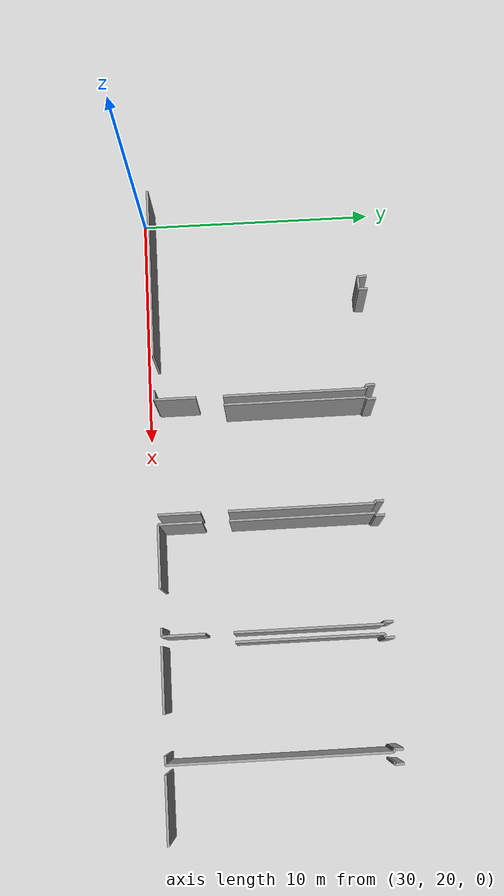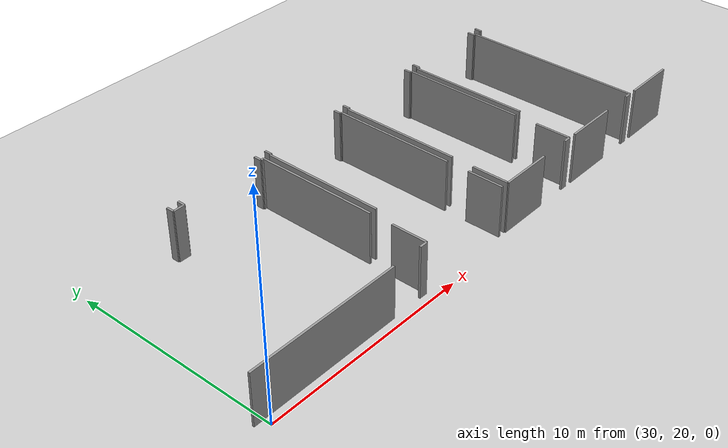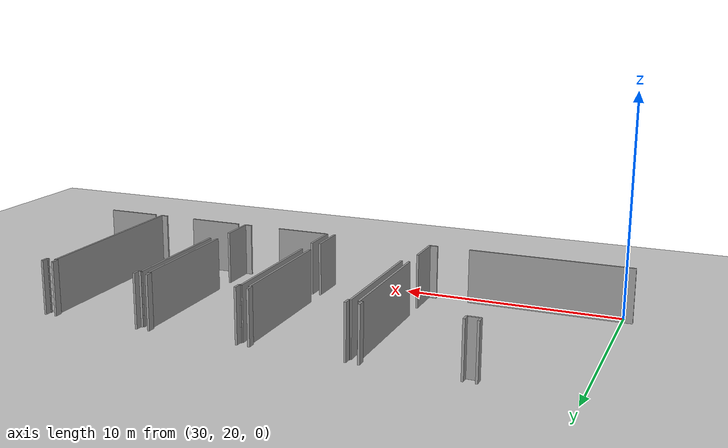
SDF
<sdf version="1.6">
 <world name="default">
  <model name="ground_plane">
   <static>1</static>
   <link name="link">
    <collision name="collision">
     <geometry><plane><normal>0 0 1</normal><size>100 100</size></plane></geometry>
     <surface><friction><ode><mu>100</mu><mu2>50</mu2></ode></friction></surface>
    </collision>
    <visual name="visual">
     <cast_shadows>0</cast_shadows>
     <geometry><plane><normal>0 0 1</normal><size>100 100</size></plane></geometry>
     <material>
      <script><uri>file://media/materials/scripts/gazebo.material</uri><name>Gazebo/Grey</name></script>
     </material>
    </visual>
   </link>
  </model>
  <model name="50010535_PLAN1">
   <static>1</static>
   <link name="Wall_558">
    <collision name="Wall_558_Collision">
     <geometry><box><size>0.36339841045 0.1 2.5</size></box></geometry>
     <pose>0.181699205225 0 1.25 0 0 0</pose>
    </collision>
    <visual name="Wall_558_Visual">
     <pose>0.181699205225 0 1.25 0 0 0</pose>
     <geometry><box><size>0.36339841045 0.1 2.5</size></box></geometry>
     <material>
      <script><uri>file://media/materials/scripts/gazebo.material</uri><name>Gazebo/Grey</name></script>
      <ambient>1 1 1 1</ambient>
     </material>
    </visual>
    <pose>136.524970934 -0.0175346086161 0 0 0 -1.57079632679</pose>
   </link>
   <link name="Wall_559">
    <collision name="Wall_559_Collision">
     <geometry><box><size>0.56161572524 0.1 2.5</size></box></geometry>
     <pose>0.28080786262 0 1.25 0 0 0</pose>
    </collision>
    <visual name="Wall_559_Visual">
     <pose>0.28080786262 0 1.25 0 0 0</pose>
     <geometry><box><size>0.56161572524 0.1 2.5</size></box></geometry>
     <material>
      <script><uri>file://media/materials/scripts/gazebo.material</uri><name>Gazebo/Grey</name></script>
      <ambient>1 1 1 1</ambient>
     </material>
    </visual>
    <pose>136.524970934 -0.380933019066 0 0 0 0.0</pose>
   </link>
   <link name="Wall_560">
    <collision name="Wall_560_Collision">
     <geometry><box><size>0.36746440665 0.1 2.5</size></box></geometry>
     <pose>0.183732203325 0 1.25 0 0 0</pose>
    </collision>
    <visual name="Wall_560_Visual">
     <pose>0.183732203325 0 1.25 0 0 0</pose>
     <geometry><box><size>0.36746440665 0.1 2.5</size></box></geometry>
     <material>
      <script><uri>file://media/materials/scripts/gazebo.material</uri><name>Gazebo/Grey</name></script>
      <ambient>1 1 1 1</ambient>
     </material>
    </visual>
    <pose>137.08658666 -0.380933019066 0 0 0 1.57079632679</pose>
   </link>
   <link name="Wall_561">
    <collision name="Wall_561_Collision">
     <geometry><box><size>0.371784527614 0.1 2.5</size></box></geometry>
     <pose>0.185892263807 0 1.25 0 0 0</pose>
    </collision>
    <visual name="Wall_561_Visual">
     <pose>0.185892263807 0 1.25 0 0 0</pose>
     <geometry><box><size>0.371784527614 0.1 2.5</size></box></geometry>
     <material>
      <script><uri>file://media/materials/scripts/gazebo.material</uri><name>Gazebo/Grey</name></script>
      <ambient>1 1 1 1</ambient>
     </material>
    </visual>
    <pose>141.274816871 -0.0134686124153 0 0 0 -1.57079632679</pose>
   </link>
   <link name="Wall_562">
    <collision name="Wall_562_Collision">
     <geometry><box><size>0.152728982294 0.1 2.5</size></box></geometry>
     <pose>0.0763644911469 0 1.25 0 0 0</pose>
    </collision>
    <visual name="Wall_562_Visual">
     <pose>0.0763644911469 0 1.25 0 0 0</pose>
     <geometry><box><size>0.152728982294 0.1 2.5</size></box></geometry>
     <material>
      <script><uri>file://media/materials/scripts/gazebo.material</uri><name>Gazebo/Grey</name></script>
      <ambient>1 1 1 1</ambient>
     </material>
    </visual>
    <pose>141.274816871 -0.385253140029 0 0 0 0.0</pose>
   </link>
   <link name="Wall_563">
    <collision name="Wall_563_Collision">
     <geometry><box><size>5.86901139114 0.1 2.5</size></box></geometry>
     <pose>2.93450569557 0 1.25 0 0 0</pose>
    </collision>
    <visual name="Wall_563_Visual">
     <pose>2.93450569557 0 1.25 0 0 0</pose>
     <geometry><box><size>5.86901139114 0.1 2.5</size></box></geometry>
     <material>
      <script><uri>file://media/materials/scripts/gazebo.material</uri><name>Gazebo/Grey</name></script>
      <ambient>1 1 1 1</ambient>
     </material>
    </visual>
    <pose>141.427545854 -0.385253140029 0 0 0 -1.57079632679</pose>
   </link>
   <link name="Wall_564">
    <collision name="Wall_564_Collision">
     <geometry><box><size>1.71051377674 0.1 2.5</size></box></geometry>
     <pose>0.855256888369 0 1.25 0 0 0</pose>
    </collision>
    <visual name="Wall_564_Visual">
     <pose>0.855256888369 0 1.25 0 0 0</pose>
     <geometry><box><size>1.71051377674 0.1 2.5</size></box></geometry>
     <material>
      <script><uri>file://media/materials/scripts/gazebo.material</uri><name>Gazebo/Grey</name></script>
      <ambient>1 1 1 1</ambient>
     </material>
    </visual>
    <pose>141.427545854 -7.3622484959 0 0 0 -1.57079632679</pose>
   </link>
   <link name="Wall_565">
    <collision name="Wall_565_Collision">
     <geometry><box><size>0.39033563528 0.1 2.5</size></box></geometry>
     <pose>0.19516781764 0 1.25 0 0 0</pose>
    </collision>
    <visual name="Wall_565_Visual">
     <pose>0.19516781764 0 1.25 0 0 0</pose>
     <geometry><box><size>0.39033563528 0.1 2.5</size></box></geometry>
     <material>
      <script><uri>file://media/materials/scripts/gazebo.material</uri><name>Gazebo/Grey</name></script>
      <ambient>1 1 1 1</ambient>
     </material>
    </visual>
    <pose>141.427545854 -9.07276227264 0 0 0 3.14159265359</pose>
   </link>
   <link name="Wall_566">
    <collision name="Wall_566_Collision">
     <geometry><box><size>7.38667386608 0.1 2.5</size></box></geometry>
     <pose>3.69333693304 0 1.25 0 0 0</pose>
    </collision>
    <visual name="Wall_566_Visual">
     <pose>3.69333693304 0 1.25 0 0 0</pose>
     <geometry><box><size>7.38667386608 0.1 2.5</size></box></geometry>
     <material>
      <script><uri>file://media/materials/scripts/gazebo.material</uri><name>Gazebo/Grey</name></script>
      <ambient>1 1 1 1</ambient>
     </material>
    </visual>
    <pose>139.535332872 -9.07276227264 0 0 0 -3.13877159251</pose>
   </link>
   <link name="Wall_568">
    <collision name="Wall_568_Collision">
     <geometry><box><size>5.83902466916 0.1 2.5</size></box></geometry>
     <pose>2.91951233458 0 1.25 0 0 0</pose>
    </collision>
    <visual name="Wall_568_Visual">
     <pose>2.91951233458 0 1.25 0 0 0</pose>
     <geometry><box><size>5.83902466916 0.1 2.5</size></box></geometry>
     <material>
      <script><uri>file://media/materials/scripts/gazebo.material</uri><name>Gazebo/Grey</name></script>
      <ambient>1 1 1 1</ambient>
     </material>
    </visual>
    <pose>141.788911266 -6.24028766923 0 0 0 1.57079632679</pose>
   </link>
   <link name="Wall_569">
    <collision name="Wall_569_Collision">
     <geometry><box><size>0.0787786763912 0.1 2.5</size></box></geometry>
     <pose>0.0393893381956 0 1.25 0 0 0</pose>
    </collision>
    <visual name="Wall_569_Visual">
     <pose>0.0393893381956 0 1.25 0 0 0</pose>
     <geometry><box><size>0.0787786763912 0.1 2.5</size></box></geometry>
     <material>
      <script><uri>file://media/materials/scripts/gazebo.material</uri><name>Gazebo/Grey</name></script>
      <ambient>1 1 1 1</ambient>
     </material>
    </visual>
    <pose>141.788911266 -0.40126300007 0 0 0 0.0</pose>
   </link>
   <link name="Wall_570">
    <collision name="Wall_570_Collision">
     <geometry><box><size>0.371276278089 0.1 2.5</size></box></geometry>
     <pose>0.185638139044 0 1.25 0 0 0</pose>
    </collision>
    <visual name="Wall_570_Visual">
     <pose>0.185638139044 0 1.25 0 0 0</pose>
     <geometry><box><size>0.371276278089 0.1 2.5</size></box></geometry>
     <material>
      <script><uri>file://media/materials/scripts/gazebo.material</uri><name>Gazebo/Grey</name></script>
      <ambient>1 1 1 1</ambient>
     </material>
    </visual>
    <pose>141.867689942 -0.40126300007 0 0 0 1.57079632679</pose>
   </link>
   <link name="Wall_571">
    <collision name="Wall_571_Collision">
     <geometry><box><size>0.349929798034 0.1 2.5</size></box></geometry>
     <pose>0.174964899017 0 1.25 0 0 0</pose>
    </collision>
    <visual name="Wall_571_Visual">
     <pose>0.174964899017 0 1.25 0 0 0</pose>
     <geometry><box><size>0.349929798034 0.1 2.5</size></box></geometry>
     <material>
      <script><uri>file://media/materials/scripts/gazebo.material</uri><name>Gazebo/Grey</name></script>
      <ambient>1 1 1 1</ambient>
     </material>
    </visual>
    <pose>146.122246717 -0.0299867219812 0 0 0 -1.57079632679</pose>
   </link>
   <link name="Wall_572">
    <collision name="Wall_572_Collision">
     <geometry><box><size>0.0853859202175 0.1 2.5</size></box></geometry>
     <pose>0.0426929601088 0 1.25 0 0 0</pose>
    </collision>
    <visual name="Wall_572_Visual">
     <pose>0.0426929601088 0 1.25 0 0 0</pose>
     <geometry><box><size>0.0853859202175 0.1 2.5</size></box></geometry>
     <material>
      <script><uri>file://media/materials/scripts/gazebo.material</uri><name>Gazebo/Grey</name></script>
      <ambient>1 1 1 1</ambient>
     </material>
    </visual>
    <pose>146.122246717 -0.379916520016 0 0 0 0.0</pose>
   </link>
   <link name="Wall_573">
    <collision name="Wall_573_Collision">
     <geometry><box><size>5.88248000356 0.1 2.5</size></box></geometry>
     <pose>2.94124000178 0 1.25 0 0 0</pose>
    </collision>
    <visual name="Wall_573_Visual">
     <pose>2.94124000178 0 1.25 0 0 0</pose>
     <geometry><box><size>5.88248000356 0.1 2.5</size></box></geometry>
     <material>
      <script><uri>file://media/materials/scripts/gazebo.material</uri><name>Gazebo/Grey</name></script>
      <ambient>1 1 1 1</ambient>
     </material>
    </visual>
    <pose>146.207632637 -0.379916520016 0 0 0 -1.57079632679</pose>
   </link>
   <link name="Wall_574">
    <collision name="Wall_574_Collision">
     <geometry><box><size>1.71813751962 0.1 2.5</size></box></geometry>
     <pose>0.859068759808 0 1.25 0 0 0</pose>
    </collision>
    <visual name="Wall_574_Visual">
     <pose>0.859068759808 0 1.25 0 0 0</pose>
     <geometry><box><size>1.71813751962 0.1 2.5</size></box></geometry>
     <material>
      <script><uri>file://media/materials/scripts/gazebo.material</uri><name>Gazebo/Grey</name></script>
      <ambient>1 1 1 1</ambient>
     </material>
    </visual>
    <pose>146.207632637 -7.36123199685 0 0 0 -1.57079632679</pose>
   </link>
   <link name="Wall_577">
    <collision name="Wall_577_Collision">
     <geometry><box><size>1.76692947403 0.1 2.5</size></box></geometry>
     <pose>0.883464737013 0 1.25 0 0 0</pose>
    </collision>
    <visual name="Wall_577_Visual">
     <pose>0.883464737013 0 1.25 0 0 0</pose>
     <geometry><box><size>1.76692947403 0.1 2.5</size></box></geometry>
     <material>
      <script><uri>file://media/materials/scripts/gazebo.material</uri><name>Gazebo/Grey</name></script>
      <ambient>1 1 1 1</ambient>
     </material>
    </visual>
    <pose>146.597205898 -9.07199989835 0 0 0 1.57079632679</pose>
   </link>
   <link name="Wall_578">
    <collision name="Wall_578_Collision">
     <geometry><box><size>5.84359891489 0.1 2.5</size></box></geometry>
     <pose>2.92179945744 0 1.25 0 0 0</pose>
    </collision>
    <visual name="Wall_578_Visual">
     <pose>2.92179945744 0 1.25 0 0 0</pose>
     <geometry><box><size>5.84359891489 0.1 2.5</size></box></geometry>
     <material>
      <script><uri>file://media/materials/scripts/gazebo.material</uri><name>Gazebo/Grey</name></script>
      <ambient>1 1 1 1</ambient>
     </material>
    </visual>
    <pose>146.597205898 -6.23190155207 0 0 0 1.57079632679</pose>
   </link>
   <link name="Wall_579">
    <collision name="Wall_579_Collision">
     <geometry><box><size>0.0965674097698 0.1 2.5</size></box></geometry>
     <pose>0.0482837048849 0 1.25 0 0 0</pose>
    </collision>
    <visual name="Wall_579_Visual">
     <pose>0.0482837048849 0 1.25 0 0 0</pose>
     <geometry><box><size>0.0965674097698 0.1 2.5</size></box></geometry>
     <material>
      <script><uri>file://media/materials/scripts/gazebo.material</uri><name>Gazebo/Grey</name></script>
      <ambient>1 1 1 1</ambient>
     </material>
    </visual>
    <pose>146.597205898 -0.38830263718 0 0 0 0.0</pose>
   </link>
   <link name="Wall_580">
    <collision name="Wall_580_Collision">
     <geometry><box><size>0.359078289486 0.1 2.5</size></box></geometry>
     <pose>0.179539144743 0 1.25 0 0 0</pose>
    </collision>
    <visual name="Wall_580_Visual">
     <pose>0.179539144743 0 1.25 0 0 0</pose>
     <geometry><box><size>0.359078289486 0.1 2.5</size></box></geometry>
     <material>
      <script><uri>file://media/materials/scripts/gazebo.material</uri><name>Gazebo/Grey</name></script>
      <ambient>1 1 1 1</ambient>
     </material>
    </visual>
    <pose>146.693773308 -0.38830263718 0 0 0 1.57079632679</pose>
   </link>
   <link name="Wall_581">
    <collision name="Wall_581_Collision">
     <geometry><box><size>0.350946297085 0.1 2.5</size></box></geometry>
     <pose>0.175473148542 0 1.25 0 0 0</pose>
    </collision>
    <visual name="Wall_581_Visual">
     <pose>0.175473148542 0 1.25 0 0 0</pose>
     <geometry><box><size>0.350946297085 0.1 2.5</size></box></geometry>
     <material>
      <script><uri>file://media/materials/scripts/gazebo.material</uri><name>Gazebo/Grey</name></script>
      <ambient>1 1 1 1</ambient>
     </material>
    </visual>
    <pose>150.912498491 -0.0292243476935 0 0 0 -1.57079632679</pose>
   </link>
   <link name="Wall_582">
    <collision name="Wall_582_Collision">
     <geometry><box><size>0.0904684154686 0.1 2.5</size></box></geometry>
     <pose>0.0452342077343 0 1.25 0 0 0</pose>
    </collision>
    <visual name="Wall_582_Visual">
     <pose>0.0452342077343 0 1.25 0 0 0</pose>
     <geometry><box><size>0.0904684154686 0.1 2.5</size></box></geometry>
     <material>
      <script><uri>file://media/materials/scripts/gazebo.material</uri><name>Gazebo/Grey</name></script>
      <ambient>1 1 1 1</ambient>
     </material>
    </visual>
    <pose>150.912498491 -0.380170644778 0 0 0 0.0</pose>
   </link>
   <link name="Wall_583">
    <collision name="Wall_583_Collision">
     <geometry><box><size>5.88146350451 0.1 2.5</size></box></geometry>
     <pose>2.94073175225 0 1.25 0 0 0</pose>
    </collision>
    <visual name="Wall_583_Visual">
     <pose>2.94073175225 0 1.25 0 0 0</pose>
     <geometry><box><size>5.88146350451 0.1 2.5</size></box></geometry>
     <material>
      <script><uri>file://media/materials/scripts/gazebo.material</uri><name>Gazebo/Grey</name></script>
      <ambient>1 1 1 1</ambient>
     </material>
    </visual>
    <pose>151.002966907 -0.380170644778 0 0 0 -1.57079632679</pose>
   </link>
   <link name="Wall_584">
    <collision name="Wall_584_Collision">
     <geometry><box><size>1.70441478244 0.1 2.5</size></box></geometry>
     <pose>0.852207391219 0 1.25 0 0 0</pose>
    </collision>
    <visual name="Wall_584_Visual">
     <pose>0.852207391219 0 1.25 0 0 0</pose>
     <geometry><box><size>1.70441478244 0.1 2.5</size></box></geometry>
     <material>
      <script><uri>file://media/materials/scripts/gazebo.material</uri><name>Gazebo/Grey</name></script>
      <ambient>1 1 1 1</ambient>
     </material>
    </visual>
    <pose>151.002966907 -7.35996137304 0 0 0 -1.57079632679</pose>
   </link>
   <link name="Wall_585">
    <collision name="Wall_585_Collision">
     <geometry><box><size>0.341035431345 0.1 2.5</size></box></geometry>
     <pose>0.170517715673 0 1.25 0 0 0</pose>
    </collision>
    <visual name="Wall_585_Visual">
     <pose>0.170517715673 0 1.25 0 0 0</pose>
     <geometry><box><size>0.341035431345 0.1 2.5</size></box></geometry>
     <material>
      <script><uri>file://media/materials/scripts/gazebo.material</uri><name>Gazebo/Grey</name></script>
      <ambient>1 1 1 1</ambient>
     </material>
    </visual>
    <pose>151.002966907 -9.06437615547 0 0 0 3.14159265359</pose>
   </link>
   <link name="Wall_586">
    <collision name="Wall_586_Collision">
     <geometry><box><size>2.53541421793 0.1 2.5</size></box></geometry>
     <pose>1.26770710897 0 1.25 0 0 0</pose>
    </collision>
    <visual name="Wall_586_Visual">
     <pose>1.26770710897 0 1.25 0 0 0</pose>
     <geometry><box><size>2.53541421793 0.1 2.5</size></box></geometry>
     <material>
      <script><uri>file://media/materials/scripts/gazebo.material</uri><name>Gazebo/Grey</name></script>
      <ambient>1 1 1 1</ambient>
     </material>
    </visual>
    <pose>149.132608654 -9.06437615547 0 0 0 -3.13858574675</pose>
   </link>
   <link name="Wall_588">
    <collision name="Wall_588_Collision">
     <geometry><box><size>5.82885967866 0.1 2.5</size></box></geometry>
     <pose>2.91442983933 0 1.25 0 0 0</pose>
    </collision>
    <visual name="Wall_588_Visual">
     <pose>2.91442983933 0 1.25 0 0 0</pose>
     <geometry><box><size>5.82885967866 0.1 2.5</size></box></geometry>
     <material>
      <script><uri>file://media/materials/scripts/gazebo.material</uri><name>Gazebo/Grey</name></script>
      <ambient>1 1 1 1</ambient>
     </material>
    </visual>
    <pose>151.375513809 -6.22224481109 0 0 0 1.57079632679</pose>
   </link>
   <link name="Wall_589">
    <collision name="Wall_589_Collision">
     <geometry><box><size>0.150441859431 0.1 2.5</size></box></geometry>
     <pose>0.0752209297154 0 1.25 0 0 0</pose>
    </collision>
    <visual name="Wall_589_Visual">
     <pose>0.0752209297154 0 1.25 0 0 0</pose>
     <geometry><box><size>0.150441859431 0.1 2.5</size></box></geometry>
     <material>
      <script><uri>file://media/materials/scripts/gazebo.material</uri><name>Gazebo/Grey</name></script>
      <ambient>1 1 1 1</ambient>
     </material>
    </visual>
    <pose>151.375513809 -0.393385132431 0 0 0 0.0</pose>
   </link>
   <link name="Wall_590">
    <collision name="Wall_590_Collision">
     <geometry><box><size>0.371784527614 0.1 2.5</size></box></geometry>
     <pose>0.185892263807 0 1.25 0 0 0</pose>
    </collision>
    <visual name="Wall_590_Visual">
     <pose>0.185892263807 0 1.25 0 0 0</pose>
     <geometry><box><size>0.371784527614 0.1 2.5</size></box></geometry>
     <material>
      <script><uri>file://media/materials/scripts/gazebo.material</uri><name>Gazebo/Grey</name></script>
      <ambient>1 1 1 1</ambient>
     </material>
    </visual>
    <pose>151.525955668 -0.393385132431 0 0 0 1.57079632679</pose>
   </link>
   <link name="Wall_591">
    <collision name="Wall_591_Collision">
     <geometry><box><size>0.363144285687 0.1 2.5</size></box></geometry>
     <pose>0.181572142844 0 1.25 0 0 0</pose>
    </collision>
    <visual name="Wall_591_Visual">
     <pose>0.181572142844 0 1.25 0 0 0</pose>
     <geometry><box><size>0.363144285687 0.1 2.5</size></box></geometry>
     <material>
      <script><uri>file://media/materials/scripts/gazebo.material</uri><name>Gazebo/Grey</name></script>
      <ambient>1 1 1 1</ambient>
     </material>
    </visual>
    <pose>155.730958114 -0.0216006048169 0 0 0 -1.57079632679</pose>
   </link>
   <link name="Wall_592">
    <collision name="Wall_592_Collision">
     <geometry><box><size>0.0996169069205 0.1 2.5</size></box></geometry>
     <pose>0.0498084534602 0 1.25 0 0 0</pose>
    </collision>
    <visual name="Wall_592_Visual">
     <pose>0.0498084534602 0 1.25 0 0 0</pose>
     <geometry><box><size>0.0996169069205 0.1 2.5</size></box></geometry>
     <material>
      <script><uri>file://media/materials/scripts/gazebo.material</uri><name>Gazebo/Grey</name></script>
      <ambient>1 1 1 1</ambient>
     </material>
    </visual>
    <pose>155.730958114 -0.384744890504 0 0 0 0.0</pose>
   </link>
   <link name="Wall_593">
    <collision name="Wall_593_Collision">
     <geometry><box><size>8.68801738213 0.1 2.5</size></box></geometry>
     <pose>4.34400869107 0 1.25 0 0 0</pose>
    </collision>
    <visual name="Wall_593_Visual">
     <pose>4.34400869107 0 1.25 0 0 0</pose>
     <geometry><box><size>8.68801738213 0.1 2.5</size></box></geometry>
     <material>
      <script><uri>file://media/materials/scripts/gazebo.material</uri><name>Gazebo/Grey</name></script>
      <ambient>1 1 1 1</ambient>
     </material>
    </visual>
    <pose>155.830575021 -0.384744890504 0 0 0 -1.57079632679</pose>
   </link>
   <link name="Wall_594">
    <collision name="Wall_594_Collision">
     <geometry><box><size>0.337731809432 0.1 2.5</size></box></geometry>
     <pose>0.168865904716 0 1.25 0 0 0</pose>
    </collision>
    <visual name="Wall_594_Visual">
     <pose>0.168865904716 0 1.25 0 0 0</pose>
     <geometry><box><size>0.337731809432 0.1 2.5</size></box></geometry>
     <material>
      <script><uri>file://media/materials/scripts/gazebo.material</uri><name>Gazebo/Grey</name></script>
      <ambient>1 1 1 1</ambient>
     </material>
    </visual>
    <pose>155.830575021 -9.07276227264 0 0 0 3.14159265359</pose>
   </link>
   <link name="Wall_595">
    <collision name="Wall_595_Collision">
     <geometry><box><size>2.58724740251 0.1 2.5</size></box></geometry>
     <pose>1.29362370125 0 1.25 0 0 0</pose>
    </collision>
    <visual name="Wall_595_Visual">
     <pose>1.29362370125 0 1.25 0 0 0</pose>
     <geometry><box><size>2.58724740251 0.1 2.5</size></box></geometry>
     <material>
      <script><uri>file://media/materials/scripts/gazebo.material</uri><name>Gazebo/Grey</name></script>
      <ambient>1 1 1 1</ambient>
     </material>
    </visual>
    <pose>153.962758016 -9.07276227264 0 0 0 -3.14002110003</pose>
   </link>
   <link name="Wall_597">
    <collision name="Wall_597_Collision">
     <geometry><box><size>0.0861482945052 0.1 2.5</size></box></geometry>
     <pose>0.0430741472526 0 1.25 0 0 0</pose>
    </collision>
    <visual name="Wall_597_Visual">
     <pose>0.0430741472526 0 1.25 0 0 0</pose>
     <geometry><box><size>0.0861482945052 0.1 2.5</size></box></geometry>
     <material>
      <script><uri>file://media/materials/scripts/gazebo.material</uri><name>Gazebo/Grey</name></script>
      <ambient>1 1 1 1</ambient>
     </material>
    </visual>
    <pose>156.18965331 -0.38931913623 0 0 0 0.0</pose>
   </link>
   <link name="Wall_598">
    <collision name="Wall_598_Collision">
     <geometry><box><size>0.359332414249 0.1 2.5</size></box></geometry>
     <pose>0.179666207124 0 1.25 0 0 0</pose>
    </collision>
    <visual name="Wall_598_Visual">
     <pose>0.179666207124 0 1.25 0 0 0</pose>
     <geometry><box><size>0.359332414249 0.1 2.5</size></box></geometry>
     <material>
      <script><uri>file://media/materials/scripts/gazebo.material</uri><name>Gazebo/Grey</name></script>
      <ambient>1 1 1 1</ambient>
     </material>
    </visual>
    <pose>156.275801605 -0.38931913623 0 0 0 1.57079632679</pose>
   </link>
   <link name="Wall_603">
    <collision name="Wall_603_Collision">
     <geometry><box><size>2.58070003744 0.1 2.5</size></box></geometry>
     <pose>1.29035001872 0 1.25 0 0 0</pose>
    </collision>
    <visual name="Wall_603_Visual">
     <pose>1.29035001872 0 1.25 0 0 0</pose>
     <geometry><box><size>2.58070003744 0.1 2.5</size></box></geometry>
     <material>
      <script><uri>file://media/materials/scripts/gazebo.material</uri><name>Gazebo/Grey</name></script>
      <ambient>1 1 1 1</ambient>
     </material>
    </visual>
    <pose>158.770290274 -9.0628514069 0 0 0 -3.13460113777</pose>
   </link>
   <pose>-102.6 29.5103111122 0 0 0 0</pose>
  </model>
 </world>
</sdf>
